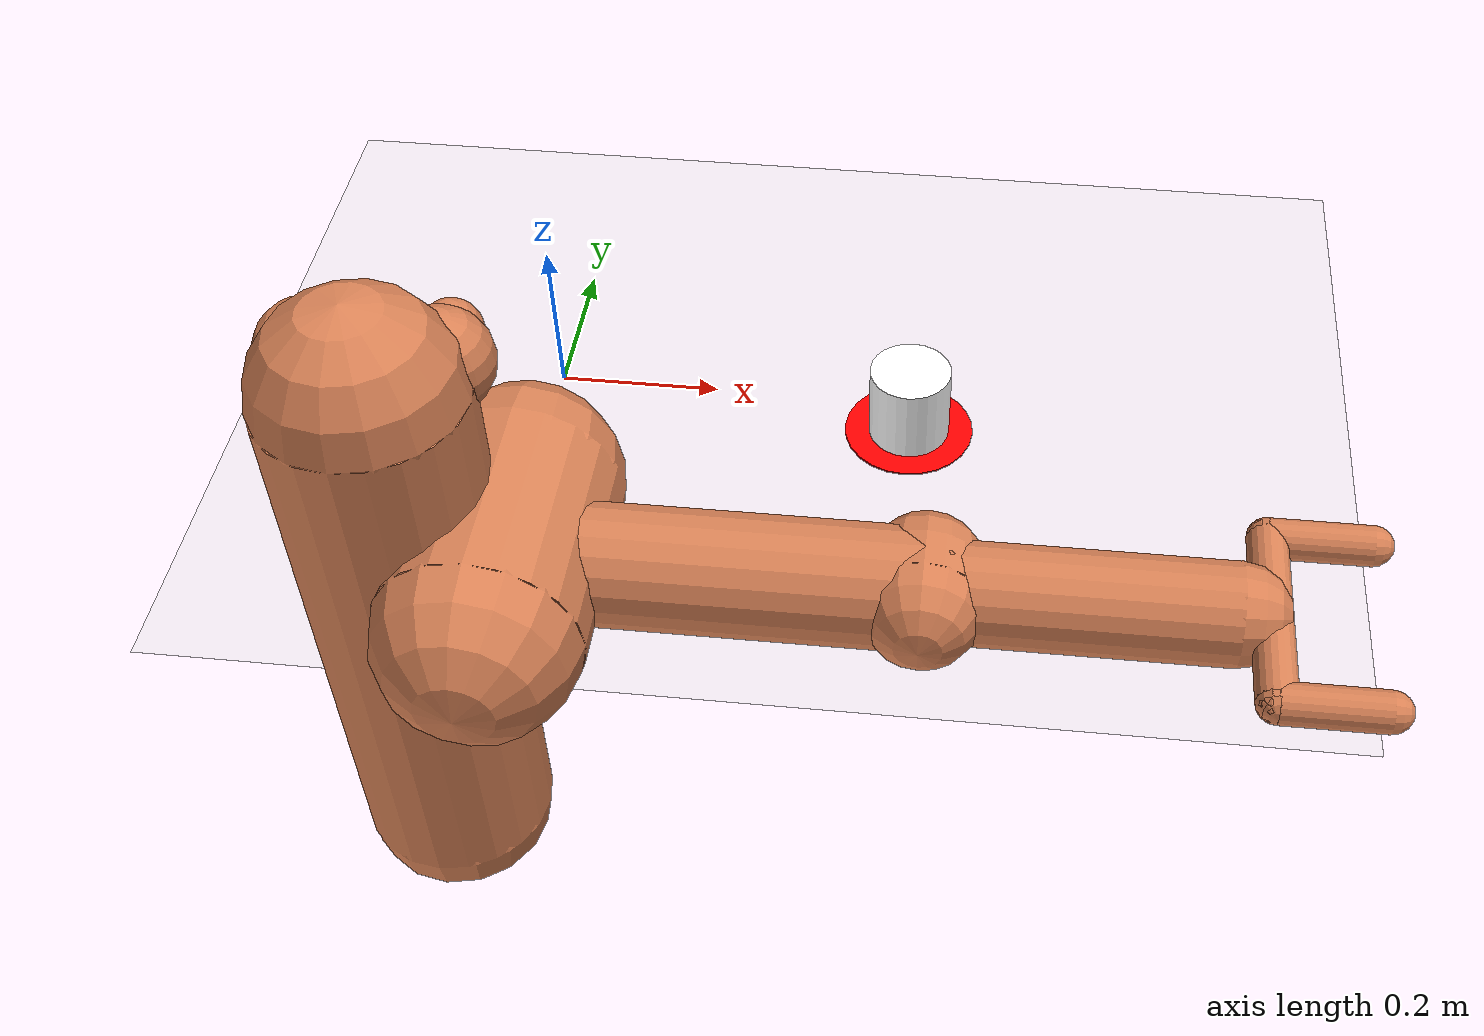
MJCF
<mujoco model="arm3d">
  <include file="scene.xml"/>
  <compiler inertiafromgeom="true" angle="radian" coordinate="local"/>
  <option timestep="0.01" gravity="0 0 0" iterations="20" integrator="Euler" />

  <default>
    <joint armature='0.04' damping="1" limited="true"/>
    <geom friction=".8 .1 .1" density="300" margin="0.002" condim="1" contype="0" conaffinity="0" material="geom"/>
  </default>

  <worldbody>
    <geom name="table" type="plane" pos="0 0.5 0" size="1 1 0.1" contype="1" conaffinity="1" material="groundplane"/>
    <body name="r_shoulder_pan_link" pos="0 -0.6 0.325">
      <geom name="e1" type="sphere" pos="-0.06 0.05 0.2" size="0.05" />
      <geom name="e2" type="sphere" pos=" 0.06 0.05 0.2" size="0.05" />
      <geom name="e1p" type="sphere" pos="-0.06 0.09 0.2" size="0.03" />
      <geom name="e2p" type="sphere" pos=" 0.06 0.09 0.2" size="0.03" />
      <geom name="sp" type="capsule" fromto="0 0 -0.4 0 0 0.2" size="0.1" />
      <joint name="r_shoulder_pan_joint" type="hinge" pos="0 0 0" axis="0 0 1" range="-2.2854 1.714602" damping="1.0" />

      <body name="r_shoulder_lift_link" pos="0.1 0 0">
        <geom name="sl" type="capsule" fromto="0 -0.1 0 0 0.1 0" size="0.1" />
        <joint name="r_shoulder_lift_joint" type="hinge" pos="0 0 0" axis="0 1 0" range="-0.5236 1.3963" damping="1.0" />

        <body name="r_upper_arm_roll_link" pos="0 0 0">
          <geom name="uar" type="capsule" fromto="-0.1 0 0 0.1 0 0" size="0.02" />
          <joint name="r_upper_arm_roll_joint" type="hinge" pos="0 0 0" axis="1 0 0" range="-1.5 1.7" damping="0.1" />

          <body name="r_upper_arm_link" pos="0 0 0">
            <geom name="ua" type="capsule" fromto="0 0 0 0.4 0 0" size="0.06" />

            <body name="r_elbow_flex_link" pos="0.4 0 0">
              <geom name="ef" type="capsule" fromto="0 -0.02 0 0.0 0.02 0" size="0.06" />
              <joint name="r_elbow_flex_joint" type="hinge" pos="0 0 0" axis="0 1 0" range="-2.3213 0" damping="0.1" />

              <body name="r_forearm_roll_link" pos="0 0 0">
                <geom name="fr" type="capsule" fromto="-0.1 0 0 0.1 0 0" size="0.02" />
                <joint name="r_forearm_roll_joint" type="hinge" limited="true" pos="0 0 0" axis="1 0 0" damping=".1" range="-1.5 1.5"/>

                <body name="r_forearm_link" pos="0 0 0">
                  <geom name="fa" type="capsule" fromto="0 0 0 0.291 0 0" size="0.05" />

                  <body name="r_wrist_flex_link" pos="0.321 0 0">
                    <geom name="wf" type="capsule" fromto="0 -0.02 0 0 0.02 0" size="0.01" />
                    <joint name="r_wrist_flex_joint" type="hinge" pos="0 0 0" axis="0 1 0" range="-1.094 0" damping=".1" />

                    <body name="r_wrist_roll_link" pos="0 0 0">
                      <joint name="r_wrist_roll_joint" type="hinge" pos="0 0 0" limited="true" axis="1 0 0" damping="0.1" range="-1.5 1.5"/>
                      <body name="tips_arm" pos="0 0 0">
                        <geom name="tip_arml" type="sphere" pos="0.1 -0.1 0." size="0.01" />
                        <geom name="tip_armr" type="sphere" pos="0.1 0.1 0." size="0.01" />
                      </body>
                      <geom type="capsule" fromto="0 -0.1 0. 0.0 +0.1 0" size="0.02" contype="1" conaffinity="1" />
                      <geom type="capsule" fromto="0 -0.1 0. 0.1 -0.1 0" size="0.02" contype="1" conaffinity="1" />
                      <geom type="capsule" fromto="0 +0.1 0. 0.1 +0.1 0." size="0.02" contype="1" conaffinity="1" />
                    </body>
                  </body>
                </body>
              </body>
            </body>
          </body>
        </body>
      </body>
    </body>

    <body name="object" pos="0.45 -0.05 0.05" >
      <geom rgba="1 1 1 0" type="sphere" size="0.05 0.05 0.05" density="0.00001" conaffinity="0"/>
      <geom rgba="1 1 1 1" type="cylinder" size="0.05 0.05 0.05" density="0.00001" contype="1" conaffinity="0"/>
      <joint name="obj_slidey" type="slide" pos="0 0 0" axis="0 1 0" range="-10.3213 10.3" damping="0.5"/>
      <joint name="obj_slidex" type="slide" pos="0 0 0" axis="1 0 0" range="-10.3213 10.3" damping="0.5"/>
    </body>

    <body name="goal" pos="0.45 -0.05 0.0020">
      <geom rgba="1 0 0 1" type="cylinder" size="0.08 0.001 0.1" density='0.00001' contype="0" conaffinity="0"/>
      <joint name="goal_slidey" type="slide" pos="0 0 0" axis="0 1 0" range="-10.3213 10.3" damping="0.5"/>
      <joint name="goal_slidex" type="slide" pos="0 0 0" axis="1 0 0" range="-10.3213 10.3" damping="0.5"/>
    </body>
  </worldbody>

  <actuator>
    <motor joint="r_shoulder_pan_joint" ctrlrange="-2.0 2.0" ctrllimited="true" />
    <motor joint="r_shoulder_lift_joint" ctrlrange="-2.0 2.0" ctrllimited="true" />
    <motor joint="r_upper_arm_roll_joint" ctrlrange="-2.0 2.0" ctrllimited="true" />
    <motor joint="r_elbow_flex_joint" ctrlrange="-2.0 2.0" ctrllimited="true" />
    <motor joint="r_forearm_roll_joint" ctrlrange="-2.0 2.0" ctrllimited="true" />
    <motor joint="r_wrist_flex_joint" ctrlrange="-2.0 2.0" ctrllimited="true" />
    <motor joint="r_wrist_roll_joint" ctrlrange="-2.0 2.0" ctrllimited="true"/>
  </actuator>
</mujoco>

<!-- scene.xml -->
<mujoco model="robot scene">

  <statistic center="0 0 0.8" extent="2"/>

  <visual>
    <headlight diffuse="0.3 0.3 0.3" ambient="0.6 0.6 0.6" specular="0.2 0.2 0.2"/>
    <rgba haze="0.15 0.25 0.35 1"/>
    <global azimuth="120" elevation="-20"/>
  </visual>

  <asset>
    <!-- Solid gray skybox -->
    <texture type="skybox" builtin="flat" rgb1="0.5 0.5 0.5" width="1" height="1"/>

    <!-- Ground texture remains the same -->
    <texture type="2d" name="groundplane" builtin="checker" mark="cross" rgb1="0.84 0.84 0.84" rgb2="0.89 0.89 0.89"
      markrgb="0.4 0.4 0.4" width="300" height="300"/>
    <material name="groundplane" texture="groundplane" texuniform="true" texrepeat="5 5" reflectance="0.05" shininess="0.5" />

    <!-- Geom materials -->
    <texture builtin="flat" height="128" mark="cross" markrgb="1 1 1" name="texgeom" random="0.01" rgb1="0.85490197 0.5137255  0.34" rgb2="0.87 0.66 0.47" type="cube" width="128"/>
    <material name="geom" texture="texgeom" texuniform="true"/>

    <texture builtin="flat" height="128" mark="cross" markrgb="1 1 1" name="fixed-geom-text" random="0.01" rgb1="0.65 0.65 0.65" rgb2="0.4 0.4 0.4" type="cube" width="128"/>
    <material name="fixed-geom-mat" texture="fixed-geom-text" texuniform="true"/>

  </asset>

  <worldbody>
    <light pos="1 -1 1.5" dir="-1 1 -1" diffuse="0.4 0.4 0.4" directional="true"/>
  </worldbody>
</mujoco>
